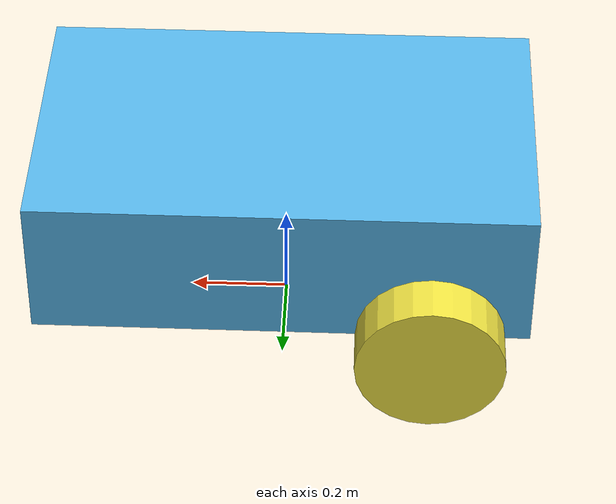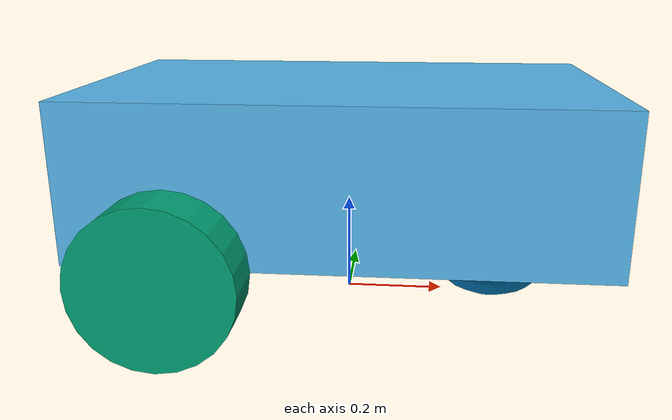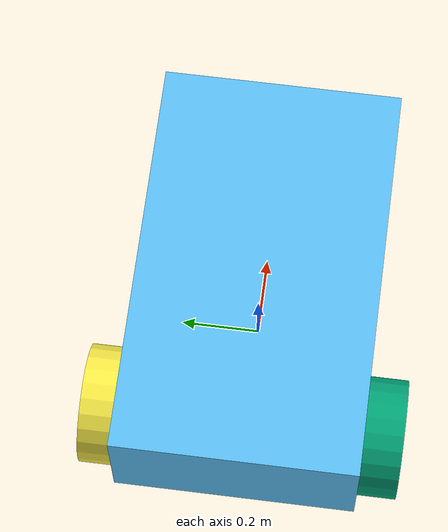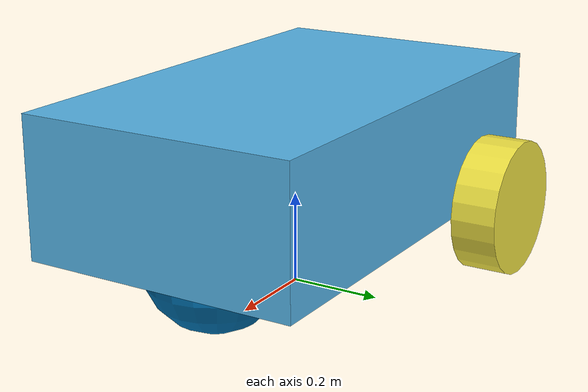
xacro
<?xml version="1.0"?>

<robot name="diff_robot" xmlns:xacro="http://www.ros.org/wiki/xacro">

<!-- CONSTANTS -->
<xacro:property name="pi_const" value="3.14159265"/>

<!-- body params -->
<xacro:property name="a" value="1.0" />
<xacro:property name="b" value="0.3" />
<xacro:property name="c" value="0.6" />

<!-- wheel params -->
<xacro:property name="r" value="0.15" />
<xacro:property name="d" value="0.1" />

<xacro:property name="s1" value="${b/2+r}" />
<xacro:property name="s2" value="${2*r}" />
<xacro:property name="s3" value="${2*r}" />
<xacro:property name="s4" value="${c/2+d/2}" />

<!-- densities -->
<xacro:property name="d1" value="2710.0" />
<xacro:property name="d2" value="2710.0" />
<xacro:property name="d3" value="2710.0" />

<!-- MASS -->
<xacro:property name="m1" value="${d1*a*b*c}" />
<xacro:property name="m2" value="${d2*pi_const*r*r*d}" />
<xacro:property name="m3" value="${d3*(4.0/3.0)*pi_const*r*r*r}" />

<!-- INERTIA (BODY) -->
<xacro:property name="Ix_body" value="${(1/12)*m1*(b*b + c*c)}" />
<xacro:property name="Iy_body" value="${(1/12)*m1*(a*a + c*c)}" />
<xacro:property name="Iz_body" value="${(1/12)*m1*(a*a + b*b)}" />

<!--INERTIA (WHEELS) -->
<xacro:property name="Izz_wheel" value="${0.5*m2*r*r}" />
<xacro:property name="Iyy_wheel" value="${(1/12)*m2*(3*r*r + d*d)}" />

<!-- castor -->
<xacro:property name="I_castor" value="${(2/5)*m3*r*r}" />

<!-- include the gazebo file configuration -->

<!--base link -->
<link name="base_link"></link>
<joint name="base_joint" type="fixed">
  <parent link="base_link" />
  <child link="body_link" />
</joint>

<!-- body link -->
<link name="body_link">

  <visual>
        <origin rpy="0 0 0 " xyz="0 0 ${s1}" />
        <geometry>
            <box size="${a} ${c} ${b}"/>
        </geometry>
    </visual>

    <collision>
        <origin rpy="0 0 0 " xyz="0 0 ${s1}" />
        <geometry>
            <box size="${a} ${c} ${b}"/>
        </geometry>
    </collision>

    <inertial>
        <mass value="${m1}"/>
        <inertia ixx="${Ix_body}" iyy="${Iy_body}" izz="${Iz_body}"
                 ixy="0" ixz="0" iyz="0"/>
    </inertial>

</link>

<!--LEFT WHEEL -->
<link name="left_wheel">

    <visual>
      <origin rpy="1.5708 0 0 " xyz="0 0 0 " />
      <geometry>
            <cylinder radius="${r}" length="${d}"/>
        </geometry>
    </visual>

    <collision>
        <origin rpy="1.5708 0 0" xyz="0 0 0 " />

        <geometry>
            <cylinder radius="${r}" length="${d}"/>
        </geometry>
    </collision>

    <inertial>
        <mass value="${m2}"/>
        <inertia ixx="${Iyy_wheel}" iyy="${Iyy_wheel}" izz="${Izz_wheel}"
ixy="0" ixz="0" iyz="0"/>
    </inertial>

</link>

<!-- RIGHT WHEEL -->
<link name="right_wheel">

    <visual>
        <origin rpy="1.5708 0 0" xyz="0 0 0 " />
        <geometry>
            <cylinder radius="${r}" length="${d}"/>
        </geometry>
    </visual>

    <collision>
        <origin rpy="1.5708 0 0" xyz="0 0 0 " />

        <geometry>
            <cylinder radius="${r}" length="${d}"/>
        </geometry>
    </collision>

    <inertial>
        <mass value="${m2}"/>
        <inertia ixx="${Iyy_wheel}" iyy="${Iyy_wheel}" izz="${Izz_wheel}"
                 ixy="0" ixz="0" iyz="0"/>
    </inertial>

</link>

<!-- JOINTS -->

<!-- LEFT WHEEL -->
<joint name="left_wheel_joint" type="continuous">
    <parent link="body_link"/>
    <child link="left_wheel"/>
    <origin xyz="${-s2} ${-s4} ${r}" rpy="0 0 0"/>
    <axis xyz="0 1 0"/>
</joint>

<!-- RIGHT WHEEL -->
<joint name="right_wheel_joint" type="continuous">
    <parent link="body_link"/>
    <child link="right_wheel"/>
    <origin xyz="${-s2} ${s4} ${r}" rpy="0 0 0"/>
    <axis xyz="0 1 0"/>
</joint>

<!-- CASTOR WHEEL -->
<link name="castor_wheel">

    <visual>
        <geometry>
            <sphere radius="${r}"/>
        </geometry>
    </visual>

    <collision>
        <geometry>
            <sphere radius="${r}"/>
        </geometry>
    </collision>

    <inertial>
        <mass value="${m3}"/>
        <inertia ixx="${I_castor}" iyy="${I_castor}" izz="${I_castor}"
                 ixy="0" ixz="0" iyz="0"/>
    </inertial>

</link>

<joint name="castor_joint" type="fixed">
    <parent link="body_link"/>
    <child link="castor_wheel"/>
    <origin xyz="${s3} 0 ${r}" rpy="0 0 0"/>
</joint>

<!-- lidar link and joint -->

<link name="lidar_link">

  <visual>
        <origin xyz="0 0 0" rpy="0 0 0 " />
        <geometry>
            <cylinder radius="0.1" length="0.1"/>
        </geometry>
  </visual>
  <collision>
        <origin xyz="0 0 0" rpy="0 0 0" />
        <geometry>
            <cylinder radius="0.1" length="0.1" />
        </geometry>
  </collision>

  <inertial>
        <mass value="1e-6"/>
        <inertia ixx="0.0001" iyy="0.0001" izz="0.0001"
                 ixy="0" ixz="0" iyz="0"/>
  </inertial>

</link>
<joint name="lidar_joint" type="fixed">
    <parent link="body_link"/>
    <child link="lidar_link"/>
    <origin xyz="0 0 ${s1+0.05}" rpy="1.5708 0 0"/>
    <axis xyz="0 1 0" rpy="0 0 0" />
</joint>

<!--ros2 control addition -->
<ros2_control name="NXTSystem" type="system">
  <hardware>
    <plugin>nxt_hardware/NXTSystem</plugin>
  </hardware>
  <joint name="left_wheel_joint">
    <command_interface name="velocity" />
    <state_interface name="position" />
    <state_interface name="velocity" />
  </joint>

  <joint name="right_wheel_joint">
    <command_interface name="velocity" />
    <state_interface name="position" />
    <state_interface name="velocity" />
  </joint>
</ros2_control>
</robot>
